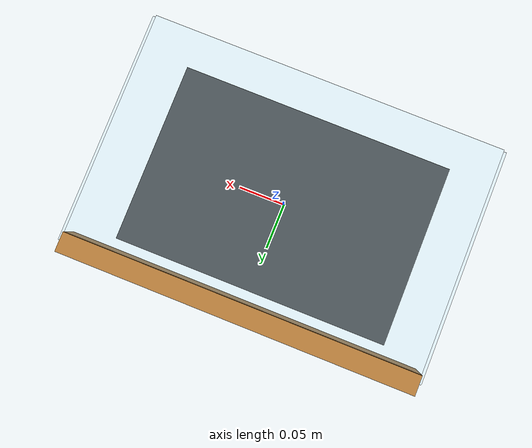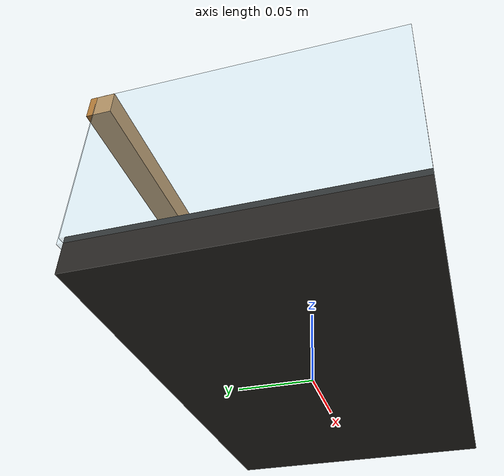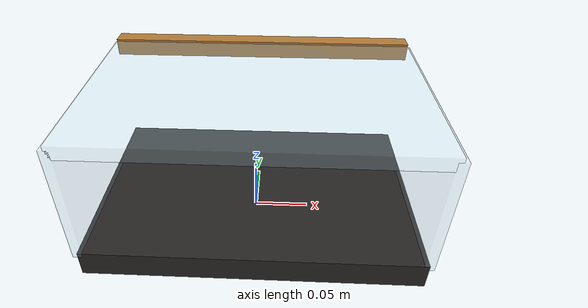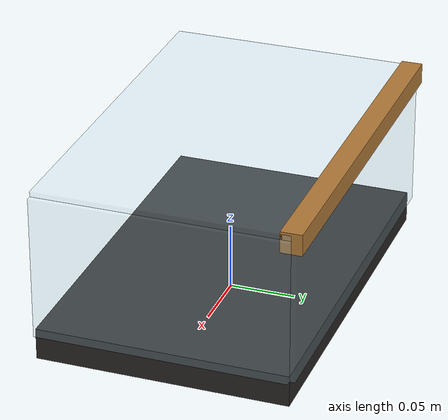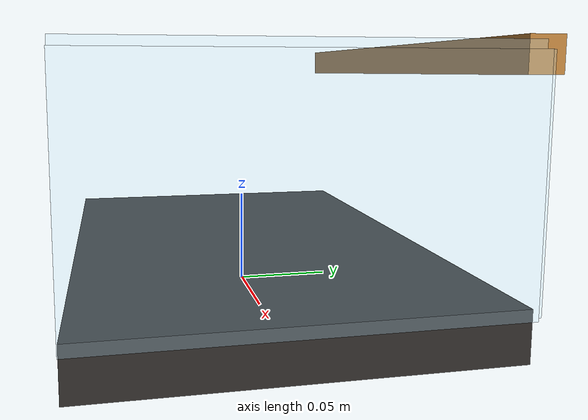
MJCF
<mujoco model="articulated_clear_display_case">
  <default>
    <joint limited="true" damping="0.8" frictionloss="0.08" stiffness="1.5"/>
    <geom condim="4" friction="0.9 0.01 0.001"/>
  </default>
  <asset>
    <material name="clear_acrylic" rgba="0.72 0.90 1.0 0.24"/>
    <material name="dark_tray" rgba="0.16 0.15 0.14 1.0"/>
    <material name="brass_hinge" rgba="0.70 0.48 0.22 1.0"/>
  </asset>
  <worldbody>
    <body name="display_case_base" pos="0 0 0">
      <geom
        name="display_case_tray"
        type="box"
        size="0.145 0.095 0.012"
        pos="0 0 0.012"
        mass="0.20"
        material="dark_tray"
      />
      <geom
        name="display_case_back_panel"
        type="box"
        size="0.145 0.004 0.055"
        pos="0 0.095 0.075"
        mass="0.025"
        material="clear_acrylic"
      />
      <geom
        name="display_case_left_panel"
        type="box"
        size="0.004 0.095 0.055"
        pos="-0.145 0 0.075"
        mass="0.020"
        material="clear_acrylic"
      />
      <geom
        name="display_case_right_panel"
        type="box"
        size="0.004 0.095 0.055"
        pos="0.145 0 0.075"
        mass="0.020"
        material="clear_acrylic"
      />
      <body name="display_case_lid" pos="0 0.095 0.128">
        <joint name="display_case_lid_hinge" type="hinge" axis="1 0 0" range="0 1.25"/>
        <geom
          name="display_case_lid_panel"
          type="box"
          size="0.145 0.095 0.006"
          pos="0 -0.095 0"
          mass="0.055"
          material="clear_acrylic"
        />
        <geom
          name="display_case_hinge_bar"
          type="box"
          size="0.145 0.008 0.008"
          pos="0 0 0"
          mass="0.035"
          material="brass_hinge"
        />
      </body>
    </body>
  </worldbody>
</mujoco>
